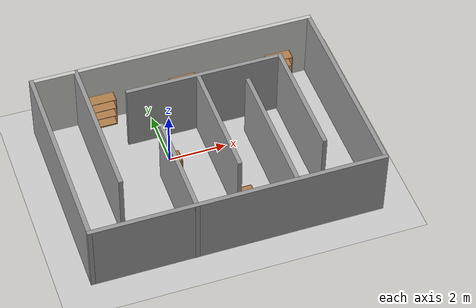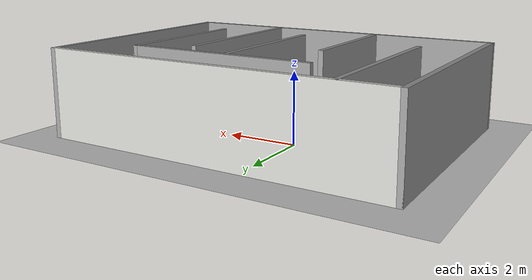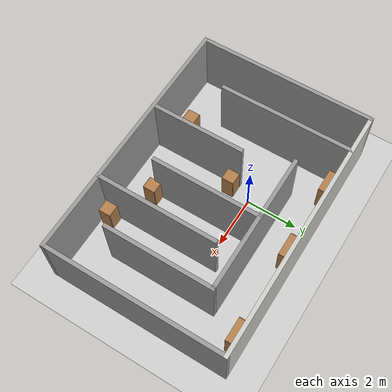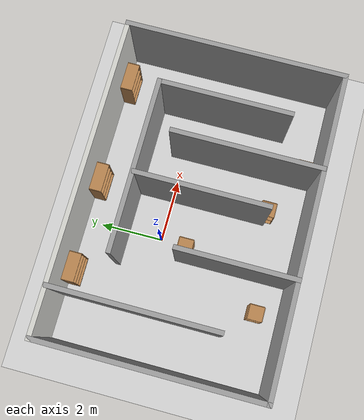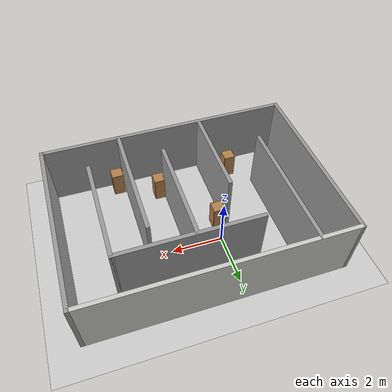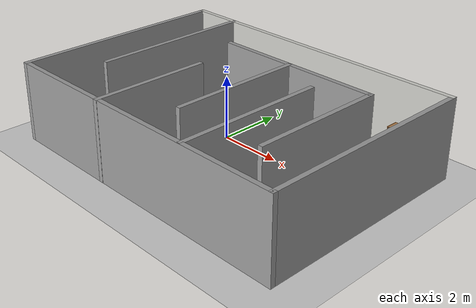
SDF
<sdf version="1.6">
 <world name="default">
  <model name="ground_plane">
   <static>1</static>
   <link name="link">
    <collision name="collision">
     <geometry><plane><normal>0 0 1</normal><size>100 100</size></plane></geometry>
     <surface><friction><ode><mu>100</mu><mu2>50</mu2></ode></friction></surface>
    </collision>
    <visual name="visual">
     <cast_shadows>0</cast_shadows>
     <geometry><plane><normal>0 0 1</normal><size>100 100</size></plane></geometry>
     <material>
      <script><uri>file://media/materials/scripts/gazebo.material</uri><name>Gazebo/Grey</name></script>
     </material>
    </visual>
   </link>
  </model>
  <gravity>0 0 -9.8</gravity>
  <magnetic_field>6e-06 2.3e-05 -4.2e-05</magnetic_field>
  <atmosphere type="adiabatic"/>
  <physics name="default_physics" default="0" type="ode">
   <max_step_size>0.001</max_step_size>
   <real_time_factor>1</real_time_factor>
   <real_time_update_rate>1000</real_time_update_rate>
  </physics>
  <scene><ambient>0.4 0.4 0.4 1</ambient><background>0.7 0.7 0.7 1</background><shadows>1</shadows></scene>
  <spherical_coordinates>
   <surface_model>EARTH_WGS84</surface_model>
   <latitude_deg>0</latitude_deg>
   <longitude_deg>0</longitude_deg>
   <elevation>0</elevation>
   <heading_deg>0</heading_deg>
  </spherical_coordinates>
  <model name="test1">
   <pose>0.981783 -0.828627 0 0 -0 0</pose>
   <link name="Wall_0">
    <collision name="Wall_0_Collision">
     <geometry><box><size>10 0.15 2.5</size></box></geometry>
     <pose>0 0 1.25 0 -0 0</pose>
    </collision>
    <visual name="Wall_0_Visual">
     <pose>0 0 1.25 0 -0 0</pose>
     <geometry><box><size>10 0.15 2.5</size></box></geometry>
     <material>
      <script><uri>file://media/materials/scripts/gazebo.material</uri><name>Gazebo/CeilingTiled</name></script>
      <ambient>1 1 1 1</ambient>
     </material>
    </visual>
    <pose>0 3.42752 0 0 -0 0</pose>
   </link>
   <link name="Wall_1">
    <collision name="Wall_1_Collision">
     <geometry><box><size>7 0.15 2.5</size></box></geometry>
     <pose>0 0 1.25 0 -0 0</pose>
    </collision>
    <visual name="Wall_1_Visual">
     <pose>0 0 1.25 0 -0 0</pose>
     <geometry><box><size>7 0.15 2.5</size></box></geometry>
     <material>
      <script><uri>file://media/materials/scripts/gazebo.material</uri><name>Gazebo/Grey</name></script>
      <ambient>1 1 1 1</ambient>
     </material>
    </visual>
    <pose>4.925 0.002521 0 0 0 -1.5708</pose>
   </link>
   <link name="Wall_10">
    <collision name="Wall_10_Collision">
     <geometry><box><size>3.75 0.15 2.5</size></box></geometry>
     <pose>0 0 1.25 0 -0 0</pose>
    </collision>
    <visual name="Wall_10_Visual">
     <pose>0 0 1.25 0 -0 0</pose>
     <geometry><box><size>3.75 0.15 2.5</size></box></geometry>
     <material>
      <script><uri>file://media/materials/scripts/gazebo.material</uri><name>Gazebo/Grey</name></script>
      <ambient>1 1 1 1</ambient>
     </material>
    </visual>
    <pose>-1.4336 -1.62752 0 0 0 -1.5708</pose>
   </link>
   <link name="Wall_12">
    <collision name="Wall_12_Collision">
     <geometry><box><size>4.25 0.15 2.5</size></box></geometry>
     <pose>0 0 1.25 0 -0 0</pose>
    </collision>
    <visual name="Wall_12_Visual">
     <pose>0 0 1.25 0 -0 0</pose>
     <geometry><box><size>4.25 0.15 2.5</size></box></geometry>
     <material>
      <script><uri>file://media/materials/scripts/gazebo.material</uri><name>Gazebo/Grey</name></script>
      <ambient>1 1 1 1</ambient>
     </material>
    </visual>
    <pose>0.416851 -0.107527 0 0 0 -1.5708</pose>
   </link>
   <link name="Wall_14">
    <collision name="Wall_14_Collision">
     <geometry><box><size>4.75 0.15 2.5</size></box></geometry>
     <pose>0 0 1.25 0 -0 0</pose>
    </collision>
    <visual name="Wall_14_Visual">
     <pose>0 0 1.25 0 -0 0</pose>
     <geometry><box><size>4.75 0.15 2.5</size></box></geometry>
     <material>
      <script><uri>file://media/materials/scripts/gazebo.material</uri><name>Gazebo/Grey</name></script>
      <ambient>1 1 1 1</ambient>
     </material>
    </visual>
    <pose>1.92537 -1.10173 0 0 0 -1.5708</pose>
   </link>
   <link name="Wall_2">
    <collision name="Wall_2_Collision">
     <geometry><box><size>10 0.15 2.5</size></box></geometry>
     <pose>0 0 1.25 0 -0 0</pose>
    </collision>
    <visual name="Wall_2_Visual">
     <pose>0 0 1.25 0 -0 0</pose>
     <geometry><box><size>10 0.15 2.5</size></box></geometry>
     <material>
      <script><uri>file://media/materials/scripts/gazebo.material</uri><name>Gazebo/Grey</name></script>
      <ambient>1 1 1 1</ambient>
     </material>
    </visual>
    <pose>0 -3.42248 0 0 -0 3.14159</pose>
   </link>
   <link name="Wall_3">
    <collision name="Wall_3_Collision">
     <geometry><box><size>7 0.15 2.5</size></box></geometry>
     <pose>0 0 1.25 0 -0 0</pose>
    </collision>
    <visual name="Wall_3_Visual">
     <pose>0 0 1.25 0 -0 0</pose>
     <geometry><box><size>7 0.15 2.5</size></box></geometry>
     <material>
      <script><uri>file://media/materials/scripts/gazebo.material</uri><name>Gazebo/Grey</name></script>
      <ambient>1 1 1 1</ambient>
     </material>
    </visual>
    <pose>-4.925 0.002521 0 0 -0 1.5708</pose>
   </link>
   <link name="Wall_5">
    <collision name="Wall_5_Collision">
     <geometry><box><size>5.25 0.15 2.5</size></box></geometry>
     <pose>0 0 1.25 0 -0 0</pose>
    </collision>
    <visual name="Wall_5_Visual">
     <pose>0 0 1.25 0 -0 0</pose>
     <geometry><box><size>5.25 0.15 2.5</size></box></geometry>
     <material>
      <script><uri>file://media/materials/scripts/gazebo.material</uri><name>Gazebo/Grey</name></script>
      <ambient>1 1 1 1</ambient>
     </material>
    </visual>
    <pose>-3.40473 0.860764 0 0 0 -1.5708</pose>
   </link>
   <link name="Wall_7">
    <collision name="Wall_7_Collision">
     <geometry><box><size>5.5 0.15 2.5</size></box></geometry>
     <pose>0 0 1.25 0 -0 0</pose>
    </collision>
    <visual name="Wall_7_Visual">
     <pose>0 0 1.25 0 -0 0</pose>
     <geometry><box><size>5.5 0.15 2.5</size></box></geometry>
     <material>
      <script><uri>file://media/materials/scripts/gazebo.material</uri><name>Gazebo/Grey</name></script>
      <ambient>1 1 1 1</ambient>
     </material>
    </visual>
    <pose>0.658109 1.9827 0 0 -0 0</pose>
   </link>
   <link name="Wall_8">
    <collision name="Wall_8_Collision">
     <geometry><box><size>4.25 0.15 2.5</size></box></geometry>
     <pose>0 0 1.25 0 -0 0</pose>
    </collision>
    <visual name="Wall_8_Visual">
     <pose>0 0 1.25 0 -0 0</pose>
     <geometry><box><size>4.25 0.15 2.5</size></box></geometry>
     <material>
      <script><uri>file://media/materials/scripts/gazebo.material</uri><name>Gazebo/Grey</name></script>
      <ambient>1 1 1 1</ambient>
     </material>
    </visual>
    <pose>3.33311 -0.0673 0 0 0 -1.5708</pose>
   </link>
   <static>1</static>
  </model>
  <model name="bookshelf">
   <static>1</static>
   <link name="link">
    <inertial><mass>1</mass></inertial>
    <collision name="back">
     <pose>0 0.005 0.6 0 -0 0</pose>
     <geometry><box><size>0.9 0.01 1.2</size></box></geometry>
    </collision>
    <visual name="visual1">
     <pose>0 0.005 0.6 0 -0 0</pose>
     <geometry><box><size>0.9 0.01 1.2</size></box></geometry>
     <material>
      <script><uri>file://media/materials/scripts/gazebo.material</uri><name>Gazebo/Wood</name></script>
     </material>
    </visual>
    <collision name="left_side">
     <pose>0.45 -0.195 0.6 0 -0 0</pose>
     <geometry><box><size>0.02 0.4 1.2</size></box></geometry>
    </collision>
    <visual name="visual2">
     <pose>0.45 -0.195 0.6 0 -0 0</pose>
     <geometry><box><size>0.02 0.4 1.2</size></box></geometry>
     <material>
      <script><uri>file://media/materials/scripts/gazebo.material</uri><name>Gazebo/Wood</name></script>
     </material>
    </visual>
    <collision name="right_side">
     <pose>-0.45 -0.195 0.6 0 -0 0</pose>
     <geometry><box><size>0.02 0.4 1.2</size></box></geometry>
    </collision>
    <visual name="visual3">
     <pose>-0.45 -0.195 0.6 0 -0 0</pose>
     <geometry><box><size>0.02 0.4 1.2</size></box></geometry>
     <material>
      <script><uri>file://media/materials/scripts/gazebo.material</uri><name>Gazebo/Wood</name></script>
     </material>
    </visual>
    <collision name="bottom">
     <pose>0 -0.195 0.03 0 -0 0</pose>
     <geometry><box><size>0.88 0.4 0.06</size></box></geometry>
    </collision>
    <visual name="visual4">
     <pose>0 -0.195 0.03 0 -0 0</pose>
     <geometry><box><size>0.88 0.4 0.06</size></box></geometry>
     <material>
      <script><uri>file://media/materials/scripts/gazebo.material</uri><name>Gazebo/Wood</name></script>
     </material>
    </visual>
    <collision name="top">
     <pose>0 -0.195 1.19 0 -0 0</pose>
     <geometry><box><size>0.88 0.4 0.02</size></box></geometry>
    </collision>
    <visual name="visual5">
     <pose>0 -0.195 1.19 0 -0 0</pose>
     <geometry><box><size>0.88 0.4 0.02</size></box></geometry>
     <material>
      <script><uri>file://media/materials/scripts/gazebo.material</uri><name>Gazebo/Wood</name></script>
     </material>
    </visual>
    <collision name="low_shelf">
     <pose>0 -0.195 0.43 0 -0 0</pose>
     <geometry><box><size>0.88 0.4 0.02</size></box></geometry>
    </collision>
    <visual name="visual6">
     <pose>0 -0.195 0.43 0 -0 0</pose>
     <geometry><box><size>0.88 0.4 0.02</size></box></geometry>
     <material>
      <script><uri>file://media/materials/scripts/gazebo.material</uri><name>Gazebo/Wood</name></script>
     </material>
    </visual>
    <collision name="high_shelf">
     <pose>0 -0.195 0.8 0 -0 0</pose>
     <geometry><box><size>0.88 0.4 0.02</size></box></geometry>
    </collision>
    <visual name="visual7">
     <pose>0 -0.195 0.8 0 -0 0</pose>
     <geometry><box><size>0.88 0.4 0.02</size></box></geometry>
     <material>
      <script><uri>file://media/materials/scripts/gazebo.material</uri><name>Gazebo/Wood</name></script>
     </material>
    </visual>
   </link>
   <pose>-1.64717 2.52536 0 0 -0 0</pose>
  </model>
  <model name="cabinet">
   <static>1</static>
   <link name="cabinet_bottom_plate">
    <inertial>
     <pose>0 0 -1 0 -0 0</pose>
     <inertia><ixx>2.05</ixx><ixy>0</ixy><ixz>0</ixz><iyy>2.05</iyy><iyz>0</iyz><izz>2.05</izz></inertia>
     <mass>25</mass>
    </inertial>
    <collision name="cabinet_bottom_plate_geom">
     <pose>0 0 0.01 0 -0 0</pose>
     <geometry><box><size>0.45 0.45 0.02</size></box></geometry>
    </collision>
    <visual name="cabinet_bottom_plate_geom_visual">
     <pose>0 0 0.01 0 -0 0</pose>
     <geometry><box><size>0.45 0.45 0.02</size></box></geometry>
     <material>
      <script><uri>file://media/materials/scripts/gazebo.material</uri><name>Gazebo/Wood</name></script>
     </material>
    </visual>
    <collision name="cabinet_bottom_plate_geom_cabinet_back_plate">
     <pose>0.235 0 0.51 0 -0 0</pose>
     <geometry><box><size>0.02 0.45 1.02</size></box></geometry>
    </collision>
    <visual name="cabinet_bottom_plate_geom_cabinet_back_plate_visual">
     <pose>0.235 0 0.51 0 -0 0</pose>
     <geometry><box><size>0.02 0.45 1.02</size></box></geometry>
     <material>
      <script><uri>file://media/materials/scripts/gazebo.material</uri><name>Gazebo/Wood</name></script>
     </material>
    </visual>
    <collision name="cabinet_bottom_plate_geom_cabinet_left_plate">
     <pose>0 0.235 0.51 0 -0 0</pose>
     <geometry><box><size>0.45 0.02 1.02</size></box></geometry>
    </collision>
    <visual name="cabinet_bottom_plate_geom_cabinet_left_plate_visual">
     <pose>0 0.235 0.51 0 -0 0</pose>
     <geometry><box><size>0.45 0.02 1.02</size></box></geometry>
     <material>
      <script><uri>file://media/materials/scripts/gazebo.material</uri><name>Gazebo/Wood</name></script>
     </material>
    </visual>
    <collision name="cabinet_bottom_plate_geom_cabinet_middle_plate">
     <pose>0 0 0.51 0 -0 0</pose>
     <geometry><box><size>0.45 0.45 0.02</size></box></geometry>
    </collision>
    <visual name="cabinet_bottom_plate_geom_cabinet_middle_plate_visual">
     <pose>0 0 0.51 0 -0 0</pose>
     <geometry><box><size>0.45 0.45 0.02</size></box></geometry>
     <material>
      <script><uri>file://media/materials/scripts/gazebo.material</uri><name>Gazebo/Wood</name></script>
     </material>
    </visual>
    <collision name="cabinet_bottom_plate_geom_cabinet_right_plate">
     <pose>0 -0.235 0.51 0 -0 0</pose>
     <geometry><box><size>0.45 0.02 1.02</size></box></geometry>
    </collision>
    <visual name="cabinet_bottom_plate_geom_cabinet_right_plate_visual">
     <pose>0 -0.235 0.51 0 -0 0</pose>
     <geometry><box><size>0.45 0.02 1.02</size></box></geometry>
     <material>
      <script><uri>file://media/materials/scripts/gazebo.material</uri><name>Gazebo/Wood</name></script>
     </material>
    </visual>
    <collision name="cabinet_bottom_plate_geom_cabinet_top_plate">
     <pose>0 0 1.01 0 -0 0</pose>
     <geometry><box><size>0.45 0.45 0.02</size></box></geometry>
    </collision>
    <visual name="cabinet_bottom_plate_geom_cabinet_top_plate_visual">
     <pose>0 0 1.01 0 -0 0</pose>
     <geometry><box><size>0.45 0.45 0.02</size></box></geometry>
     <material>
      <script><uri>file://media/materials/scripts/gazebo.material</uri><name>Gazebo/Wood</name></script>
     </material>
    </visual>
   </link>
   <pose>3.24878 -3.84107 0 0 -0 0</pose>
  </model>
  <model name="bookshelf_0">
   <static>1</static>
   <link name="link">
    <inertial><mass>1</mass></inertial>
    <collision name="back">
     <pose>0 0.005 0.6 0 -0 0</pose>
     <geometry><box><size>0.9 0.01 1.2</size></box></geometry>
    </collision>
    <visual name="visual1">
     <pose>0 0.005 0.6 0 -0 0</pose>
     <geometry><box><size>0.9 0.01 1.2</size></box></geometry>
     <material>
      <script><uri>file://media/materials/scripts/gazebo.material</uri><name>Gazebo/Wood</name></script>
     </material>
    </visual>
    <collision name="left_side">
     <pose>0.45 -0.195 0.6 0 -0 0</pose>
     <geometry><box><size>0.02 0.4 1.2</size></box></geometry>
    </collision>
    <visual name="visual2">
     <pose>0.45 -0.195 0.6 0 -0 0</pose>
     <geometry><box><size>0.02 0.4 1.2</size></box></geometry>
     <material>
      <script><uri>file://media/materials/scripts/gazebo.material</uri><name>Gazebo/Wood</name></script>
     </material>
    </visual>
    <collision name="right_side">
     <pose>-0.45 -0.195 0.6 0 -0 0</pose>
     <geometry><box><size>0.02 0.4 1.2</size></box></geometry>
    </collision>
    <visual name="visual3">
     <pose>-0.45 -0.195 0.6 0 -0 0</pose>
     <geometry><box><size>0.02 0.4 1.2</size></box></geometry>
     <material>
      <script><uri>file://media/materials/scripts/gazebo.material</uri><name>Gazebo/Wood</name></script>
     </material>
    </visual>
    <collision name="bottom">
     <pose>0 -0.195 0.03 0 -0 0</pose>
     <geometry><box><size>0.88 0.4 0.06</size></box></geometry>
    </collision>
    <visual name="visual4">
     <pose>0 -0.195 0.03 0 -0 0</pose>
     <geometry><box><size>0.88 0.4 0.06</size></box></geometry>
     <material>
      <script><uri>file://media/materials/scripts/gazebo.material</uri><name>Gazebo/Wood</name></script>
     </material>
    </visual>
    <collision name="top">
     <pose>0 -0.195 1.19 0 -0 0</pose>
     <geometry><box><size>0.88 0.4 0.02</size></box></geometry>
    </collision>
    <visual name="visual5">
     <pose>0 -0.195 1.19 0 -0 0</pose>
     <geometry><box><size>0.88 0.4 0.02</size></box></geometry>
     <material>
      <script><uri>file://media/materials/scripts/gazebo.material</uri><name>Gazebo/Wood</name></script>
     </material>
    </visual>
    <collision name="low_shelf">
     <pose>0 -0.195 0.43 0 -0 0</pose>
     <geometry><box><size>0.88 0.4 0.02</size></box></geometry>
    </collision>
    <visual name="visual6">
     <pose>0 -0.195 0.43 0 -0 0</pose>
     <geometry><box><size>0.88 0.4 0.02</size></box></geometry>
     <material>
      <script><uri>file://media/materials/scripts/gazebo.material</uri><name>Gazebo/Wood</name></script>
     </material>
    </visual>
    <collision name="high_shelf">
     <pose>0 -0.195 0.8 0 -0 0</pose>
     <geometry><box><size>0.88 0.4 0.02</size></box></geometry>
    </collision>
    <visual name="visual7">
     <pose>0 -0.195 0.8 0 -0 0</pose>
     <geometry><box><size>0.88 0.4 0.02</size></box></geometry>
     <material>
      <script><uri>file://media/materials/scripts/gazebo.material</uri><name>Gazebo/Wood</name></script>
     </material>
    </visual>
   </link>
   <pose>4.74154 2.52737 0 0 -0 0</pose>
  </model>
  <model name="cabinet_0">
   <static>1</static>
   <link name="cabinet_bottom_plate">
    <inertial>
     <pose>0 0 -1 0 -0 0</pose>
     <inertia><ixx>2.05</ixx><ixy>0</ixy><ixz>0</ixz><iyy>2.05</iyy><iyz>0</iyz><izz>2.05</izz></inertia>
     <mass>25</mass>
    </inertial>
    <collision name="cabinet_bottom_plate_geom">
     <pose>0 0 0.01 0 -0 0</pose>
     <geometry><box><size>0.45 0.45 0.02</size></box></geometry>
    </collision>
    <visual name="cabinet_bottom_plate_geom_visual">
     <pose>0 0 0.01 0 -0 0</pose>
     <geometry><box><size>0.45 0.45 0.02</size></box></geometry>
     <material>
      <script><uri>file://media/materials/scripts/gazebo.material</uri><name>Gazebo/Wood</name></script>
     </material>
    </visual>
    <collision name="cabinet_bottom_plate_geom_cabinet_back_plate">
     <pose>0.235 0 0.51 0 -0 0</pose>
     <geometry><box><size>0.02 0.45 1.02</size></box></geometry>
    </collision>
    <visual name="cabinet_bottom_plate_geom_cabinet_back_plate_visual">
     <pose>0.235 0 0.51 0 -0 0</pose>
     <geometry><box><size>0.02 0.45 1.02</size></box></geometry>
     <material>
      <script><uri>file://media/materials/scripts/gazebo.material</uri><name>Gazebo/Wood</name></script>
     </material>
    </visual>
    <collision name="cabinet_bottom_plate_geom_cabinet_left_plate">
     <pose>0 0.235 0.51 0 -0 0</pose>
     <geometry><box><size>0.45 0.02 1.02</size></box></geometry>
    </collision>
    <visual name="cabinet_bottom_plate_geom_cabinet_left_plate_visual">
     <pose>0 0.235 0.51 0 -0 0</pose>
     <geometry><box><size>0.45 0.02 1.02</size></box></geometry>
     <material>
      <script><uri>file://media/materials/scripts/gazebo.material</uri><name>Gazebo/Wood</name></script>
     </material>
    </visual>
    <collision name="cabinet_bottom_plate_geom_cabinet_middle_plate">
     <pose>0 0 0.51 0 -0 0</pose>
     <geometry><box><size>0.45 0.45 0.02</size></box></geometry>
    </collision>
    <visual name="cabinet_bottom_plate_geom_cabinet_middle_plate_visual">
     <pose>0 0 0.51 0 -0 0</pose>
     <geometry><box><size>0.45 0.45 0.02</size></box></geometry>
     <material>
      <script><uri>file://media/materials/scripts/gazebo.material</uri><name>Gazebo/Wood</name></script>
     </material>
    </visual>
    <collision name="cabinet_bottom_plate_geom_cabinet_right_plate">
     <pose>0 -0.235 0.51 0 -0 0</pose>
     <geometry><box><size>0.45 0.02 1.02</size></box></geometry>
    </collision>
    <visual name="cabinet_bottom_plate_geom_cabinet_right_plate_visual">
     <pose>0 -0.235 0.51 0 -0 0</pose>
     <geometry><box><size>0.45 0.02 1.02</size></box></geometry>
     <material>
      <script><uri>file://media/materials/scripts/gazebo.material</uri><name>Gazebo/Wood</name></script>
     </material>
    </visual>
    <collision name="cabinet_bottom_plate_geom_cabinet_top_plate">
     <pose>0 0 1.01 0 -0 0</pose>
     <geometry><box><size>0.45 0.45 0.02</size></box></geometry>
    </collision>
    <visual name="cabinet_bottom_plate_geom_cabinet_top_plate_visual">
     <pose>0 0 1.01 0 -0 0</pose>
     <geometry><box><size>0.45 0.45 0.02</size></box></geometry>
     <material>
      <script><uri>file://media/materials/scripts/gazebo.material</uri><name>Gazebo/Wood</name></script>
     </material>
    </visual>
   </link>
   <pose>1.6612 -3.03758 0 0 -0 0</pose>
  </model>
  <model name="bookshelf_1">
   <static>1</static>
   <link name="link">
    <inertial><mass>1</mass></inertial>
    <collision name="back">
     <pose>0 0.005 0.6 0 -0 0</pose>
     <geometry><box><size>0.9 0.01 1.2</size></box></geometry>
    </collision>
    <visual name="visual1">
     <pose>0 0.005 0.6 0 -0 0</pose>
     <geometry><box><size>0.9 0.01 1.2</size></box></geometry>
     <material>
      <script><uri>file://media/materials/scripts/gazebo.material</uri><name>Gazebo/Wood</name></script>
     </material>
    </visual>
    <collision name="left_side">
     <pose>0.45 -0.195 0.6 0 -0 0</pose>
     <geometry><box><size>0.02 0.4 1.2</size></box></geometry>
    </collision>
    <visual name="visual2">
     <pose>0.45 -0.195 0.6 0 -0 0</pose>
     <geometry><box><size>0.02 0.4 1.2</size></box></geometry>
     <material>
      <script><uri>file://media/materials/scripts/gazebo.material</uri><name>Gazebo/Wood</name></script>
     </material>
    </visual>
    <collision name="right_side">
     <pose>-0.45 -0.195 0.6 0 -0 0</pose>
     <geometry><box><size>0.02 0.4 1.2</size></box></geometry>
    </collision>
    <visual name="visual3">
     <pose>-0.45 -0.195 0.6 0 -0 0</pose>
     <geometry><box><size>0.02 0.4 1.2</size></box></geometry>
     <material>
      <script><uri>file://media/materials/scripts/gazebo.material</uri><name>Gazebo/Wood</name></script>
     </material>
    </visual>
    <collision name="bottom">
     <pose>0 -0.195 0.03 0 -0 0</pose>
     <geometry><box><size>0.88 0.4 0.06</size></box></geometry>
    </collision>
    <visual name="visual4">
     <pose>0 -0.195 0.03 0 -0 0</pose>
     <geometry><box><size>0.88 0.4 0.06</size></box></geometry>
     <material>
      <script><uri>file://media/materials/scripts/gazebo.material</uri><name>Gazebo/Wood</name></script>
     </material>
    </visual>
    <collision name="top">
     <pose>0 -0.195 1.19 0 -0 0</pose>
     <geometry><box><size>0.88 0.4 0.02</size></box></geometry>
    </collision>
    <visual name="visual5">
     <pose>0 -0.195 1.19 0 -0 0</pose>
     <geometry><box><size>0.88 0.4 0.02</size></box></geometry>
     <material>
      <script><uri>file://media/materials/scripts/gazebo.material</uri><name>Gazebo/Wood</name></script>
     </material>
    </visual>
    <collision name="low_shelf">
     <pose>0 -0.195 0.43 0 -0 0</pose>
     <geometry><box><size>0.88 0.4 0.02</size></box></geometry>
    </collision>
    <visual name="visual6">
     <pose>0 -0.195 0.43 0 -0 0</pose>
     <geometry><box><size>0.88 0.4 0.02</size></box></geometry>
     <material>
      <script><uri>file://media/materials/scripts/gazebo.material</uri><name>Gazebo/Wood</name></script>
     </material>
    </visual>
    <collision name="high_shelf">
     <pose>0 -0.195 0.8 0 -0 0</pose>
     <geometry><box><size>0.88 0.4 0.02</size></box></geometry>
    </collision>
    <visual name="visual7">
     <pose>0 -0.195 0.8 0 -0 0</pose>
     <geometry><box><size>0.88 0.4 0.02</size></box></geometry>
     <material>
      <script><uri>file://media/materials/scripts/gazebo.material</uri><name>Gazebo/Wood</name></script>
     </material>
    </visual>
   </link>
   <pose>1.26343 2.525 0 0 -0 0</pose>
  </model>
  <model name="cabinet_1">
   <static>1</static>
   <link name="cabinet_bottom_plate">
    <inertial>
     <pose>0 0 -1 0 -0 0</pose>
     <inertia><ixx>2.05</ixx><ixy>0</ixy><ixz>0</ixz><iyy>2.05</iyy><iyz>0</iyz><izz>2.05</izz></inertia>
     <mass>25</mass>
    </inertial>
    <collision name="cabinet_bottom_plate_geom">
     <pose>0 0 0.01 0 -0 0</pose>
     <geometry><box><size>0.45 0.45 0.02</size></box></geometry>
    </collision>
    <visual name="cabinet_bottom_plate_geom_visual">
     <pose>0 0 0.01 0 -0 0</pose>
     <geometry><box><size>0.45 0.45 0.02</size></box></geometry>
     <material>
      <script><uri>file://media/materials/scripts/gazebo.material</uri><name>Gazebo/Wood</name></script>
     </material>
    </visual>
    <collision name="cabinet_bottom_plate_geom_cabinet_back_plate">
     <pose>0.235 0 0.51 0 -0 0</pose>
     <geometry><box><size>0.02 0.45 1.02</size></box></geometry>
    </collision>
    <visual name="cabinet_bottom_plate_geom_cabinet_back_plate_visual">
     <pose>0.235 0 0.51 0 -0 0</pose>
     <geometry><box><size>0.02 0.45 1.02</size></box></geometry>
     <material>
      <script><uri>file://media/materials/scripts/gazebo.material</uri><name>Gazebo/Wood</name></script>
     </material>
    </visual>
    <collision name="cabinet_bottom_plate_geom_cabinet_left_plate">
     <pose>0 0.235 0.51 0 -0 0</pose>
     <geometry><box><size>0.45 0.02 1.02</size></box></geometry>
    </collision>
    <visual name="cabinet_bottom_plate_geom_cabinet_left_plate_visual">
     <pose>0 0.235 0.51 0 -0 0</pose>
     <geometry><box><size>0.45 0.02 1.02</size></box></geometry>
     <material>
      <script><uri>file://media/materials/scripts/gazebo.material</uri><name>Gazebo/Wood</name></script>
     </material>
    </visual>
    <collision name="cabinet_bottom_plate_geom_cabinet_middle_plate">
     <pose>0 0 0.51 0 -0 0</pose>
     <geometry><box><size>0.45 0.45 0.02</size></box></geometry>
    </collision>
    <visual name="cabinet_bottom_plate_geom_cabinet_middle_plate_visual">
     <pose>0 0 0.51 0 -0 0</pose>
     <geometry><box><size>0.45 0.45 0.02</size></box></geometry>
     <material>
      <script><uri>file://media/materials/scripts/gazebo.material</uri><name>Gazebo/Wood</name></script>
     </material>
    </visual>
    <collision name="cabinet_bottom_plate_geom_cabinet_right_plate">
     <pose>0 -0.235 0.51 0 -0 0</pose>
     <geometry><box><size>0.45 0.02 1.02</size></box></geometry>
    </collision>
    <visual name="cabinet_bottom_plate_geom_cabinet_right_plate_visual">
     <pose>0 -0.235 0.51 0 -0 0</pose>
     <geometry><box><size>0.45 0.02 1.02</size></box></geometry>
     <material>
      <script><uri>file://media/materials/scripts/gazebo.material</uri><name>Gazebo/Wood</name></script>
     </material>
    </visual>
    <collision name="cabinet_bottom_plate_geom_cabinet_top_plate">
     <pose>0 0 1.01 0 -0 0</pose>
     <geometry><box><size>0.45 0.45 0.02</size></box></geometry>
    </collision>
    <visual name="cabinet_bottom_plate_geom_cabinet_top_plate_visual">
     <pose>0 0 1.01 0 -0 0</pose>
     <geometry><box><size>0.45 0.45 0.02</size></box></geometry>
     <material>
      <script><uri>file://media/materials/scripts/gazebo.material</uri><name>Gazebo/Wood</name></script>
     </material>
    </visual>
   </link>
   <pose>-1.55092 -3.42808 0 0 -0 0</pose>
  </model>
  <model name="cabinet_2">
   <static>1</static>
   <link name="cabinet_bottom_plate">
    <inertial>
     <pose>0 0 -1 0 -0 0</pose>
     <inertia><ixx>2.05</ixx><ixy>0</ixy><ixz>0</ixz><iyy>2.05</iyy><iyz>0</iyz><izz>2.05</izz></inertia>
     <mass>25</mass>
    </inertial>
    <collision name="cabinet_bottom_plate_geom">
     <pose>0 0 0.01 0 -0 0</pose>
     <geometry><box><size>0.45 0.45 0.02</size></box></geometry>
    </collision>
    <visual name="cabinet_bottom_plate_geom_visual">
     <pose>0 0 0.01 0 -0 0</pose>
     <geometry><box><size>0.45 0.45 0.02</size></box></geometry>
     <material>
      <script><uri>file://media/materials/scripts/gazebo.material</uri><name>Gazebo/Wood</name></script>
     </material>
    </visual>
    <collision name="cabinet_bottom_plate_geom_cabinet_back_plate">
     <pose>0.235 0 0.51 0 -0 0</pose>
     <geometry><box><size>0.02 0.45 1.02</size></box></geometry>
    </collision>
    <visual name="cabinet_bottom_plate_geom_cabinet_back_plate_visual">
     <pose>0.235 0 0.51 0 -0 0</pose>
     <geometry><box><size>0.02 0.45 1.02</size></box></geometry>
     <material>
      <script><uri>file://media/materials/scripts/gazebo.material</uri><name>Gazebo/Wood</name></script>
     </material>
    </visual>
    <collision name="cabinet_bottom_plate_geom_cabinet_left_plate">
     <pose>0 0.235 0.51 0 -0 0</pose>
     <geometry><box><size>0.45 0.02 1.02</size></box></geometry>
    </collision>
    <visual name="cabinet_bottom_plate_geom_cabinet_left_plate_visual">
     <pose>0 0.235 0.51 0 -0 0</pose>
     <geometry><box><size>0.45 0.02 1.02</size></box></geometry>
     <material>
      <script><uri>file://media/materials/scripts/gazebo.material</uri><name>Gazebo/Wood</name></script>
     </material>
    </visual>
    <collision name="cabinet_bottom_plate_geom_cabinet_middle_plate">
     <pose>0 0 0.51 0 -0 0</pose>
     <geometry><box><size>0.45 0.45 0.02</size></box></geometry>
    </collision>
    <visual name="cabinet_bottom_plate_geom_cabinet_middle_plate_visual">
     <pose>0 0 0.51 0 -0 0</pose>
     <geometry><box><size>0.45 0.45 0.02</size></box></geometry>
     <material>
      <script><uri>file://media/materials/scripts/gazebo.material</uri><name>Gazebo/Wood</name></script>
     </material>
    </visual>
    <collision name="cabinet_bottom_plate_geom_cabinet_right_plate">
     <pose>0 -0.235 0.51 0 -0 0</pose>
     <geometry><box><size>0.45 0.02 1.02</size></box></geometry>
    </collision>
    <visual name="cabinet_bottom_plate_geom_cabinet_right_plate_visual">
     <pose>0 -0.235 0.51 0 -0 0</pose>
     <geometry><box><size>0.45 0.02 1.02</size></box></geometry>
     <material>
      <script><uri>file://media/materials/scripts/gazebo.material</uri><name>Gazebo/Wood</name></script>
     </material>
    </visual>
    <collision name="cabinet_bottom_plate_geom_cabinet_top_plate">
     <pose>0 0 1.01 0 -0 0</pose>
     <geometry><box><size>0.45 0.45 0.02</size></box></geometry>
    </collision>
    <visual name="cabinet_bottom_plate_geom_cabinet_top_plate_visual">
     <pose>0 0 1.01 0 -0 0</pose>
     <geometry><box><size>0.45 0.45 0.02</size></box></geometry>
     <material>
      <script><uri>file://media/materials/scripts/gazebo.material</uri><name>Gazebo/Wood</name></script>
     </material>
    </visual>
   </link>
   <pose>-0.115405 -0.829888 0 0 -0 0</pose>
  </model>
 </world>
</sdf>
